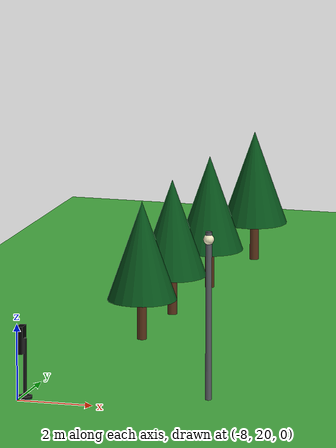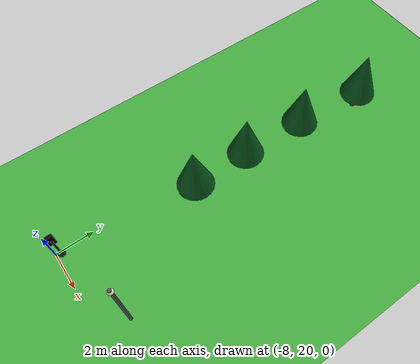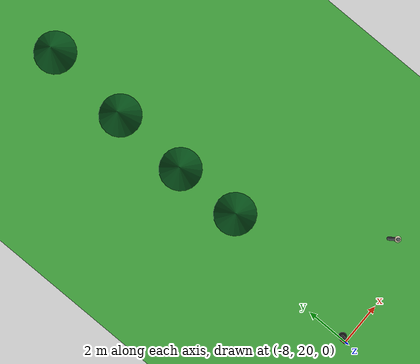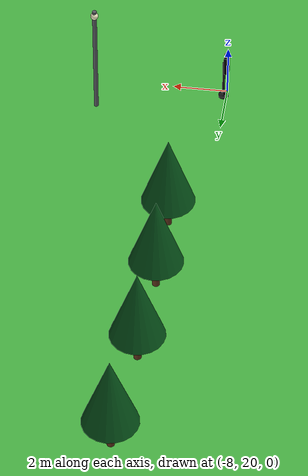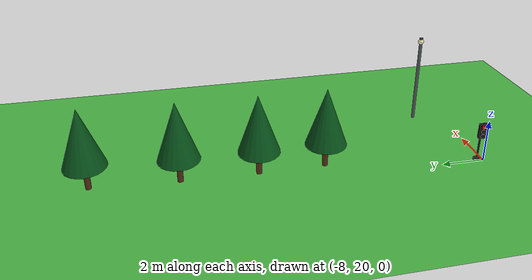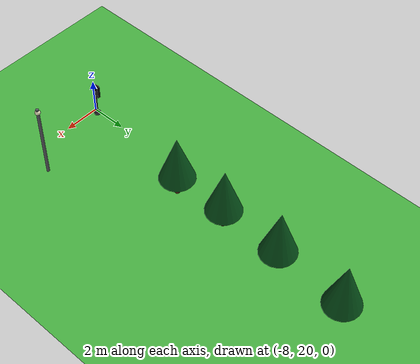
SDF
<sdf version="1.10">
 <world name="city_second">
  <model name="ground_plane">
   <static>true</static>
   <link name="link">
    <collision name="collision">
     <geometry><plane><normal>0 0 1</normal><size>300 300</size></plane></geometry>
    </collision>
    <visual name="visual">
     <geometry><plane><normal>0 0 1</normal><size>300 300</size></plane></geometry>
     <material>
      <ambient>0.280000001 0.689999998 0.25999999 1</ambient>
      <diffuse>0.280000001 0.689999998 0.25999999 1</diffuse>
      <specular>0.0299999993 0.0299999993 0.0299999993 1</specular>
     </material>
    </visual>
    <inertial>
     <mass>1</mass>
     <inertia><ixx>1</ixx><ixy>0</ixy><ixz>0</ixz><iyy>1</iyy><iyz>0</iyz><izz>1</izz></inertia>
    </inertial>
   </link>
  </model>
  <model name="lamp_1_2_15">
   <static>true</static>
   <pose>-3.3274400000000002 21.4406 2.2000000000000002 0 0 0</pose>
   <link name="link">
    <collision name="collision">
     <geometry>
      <cylinder><radius>0.080000000000000002</radius><length>4.4000000000000004</length></cylinder>
     </geometry>
    </collision>
    <visual name="pole">
     <geometry>
      <cylinder><radius>0.080000000000000002</radius><length>4.4000000000000004</length></cylinder>
     </geometry>
     <material>
      <ambient>0.349999994 0.360000014 0.379999995 1</ambient>
      <diffuse>0.349999994 0.360000014 0.379999995 1</diffuse>
      <specular>0.0299999993 0.0299999993 0.0299999993 1</specular>
     </material>
    </visual>
    <visual name="lamp_head">
     <pose>0 0 2 0 0 0</pose>
     <geometry><sphere><radius>0.14000000000000001</radius></sphere></geometry>
     <material>
      <ambient>0.959999979 0.939999998 0.779999971 1</ambient>
      <diffuse>0.959999979 0.939999998 0.779999971 1</diffuse>
      <specular>0.0299999993 0.0299999993 0.0299999993 1</specular>
     </material>
    </visual>
    <inertial>
     <mass>1</mass>
     <inertia><ixx>1</ixx><ixy>0</ixy><ixz>0</ixz><iyy>1</iyy><iyz>0</iyz><izz>1</izz></inertia>
    </inertial>
   </link>
  </model>
  <model name="Pine Tree_2">
   <static>true</static>
   <pose>-6.4425299999999996 37.668399999999998 0 0 0 0</pose>
   <link name="link">
    <collision name="footprint">
     <pose>0 0 0.050000000000000003 0 0 0</pose>
     <geometry>
      <cylinder><radius>0.65000000000000002</radius><length>0.10000000000000001</length></cylinder>
     </geometry>
    </collision>
    <visual name="trunk">
     <pose>0 0 0.90000000000000002 0 0 0</pose>
     <geometry><cylinder><radius>0.13</radius><length>1.8</length></cylinder></geometry>
     <material>
      <ambient>0.360000014 0.200000003 0.100000001 1</ambient>
      <diffuse>0.360000014 0.200000003 0.100000001 1</diffuse>
      <specular>0.119999997 0.119999997 0.119999997 1</specular>
      <emissive>0 0 0 1</emissive>
     </material>
    </visual>
    <visual name="crown">
     <pose>0 0 2.4500000000000002 0 0 0</pose>
     <geometry><cone><radius>0.94999999999999996</radius><length>2.7000000000000002</length></cone></geometry>
     <material>
      <ambient>0.0299999993 0.340000004 0.109999999 1</ambient>
      <diffuse>0.0299999993 0.340000004 0.109999999 1</diffuse>
      <specular>0.119999997 0.119999997 0.119999997 1</specular>
      <emissive>0 0 0 1</emissive>
     </material>
    </visual>
    <inertial>
     <mass>1</mass>
     <inertia><ixx>1</ixx><ixy>0</ixy><ixz>0</ixz><iyy>1</iyy><iyz>0</iyz><izz>1</izz></inertia>
    </inertial>
   </link>
  </model>
  <model name="Pine Tree_3">
   <static>true</static>
   <pose>-6.7212500000000004 33.771900000000002 0 0 0 0</pose>
   <link name="link">
    <collision name="footprint">
     <pose>0 0 0.050000000000000003 0 0 0</pose>
     <geometry>
      <cylinder><radius>0.65000000000000002</radius><length>0.10000000000000001</length></cylinder>
     </geometry>
    </collision>
    <visual name="trunk">
     <pose>0 0 0.90000000000000002 0 0 0</pose>
     <geometry><cylinder><radius>0.13</radius><length>1.8</length></cylinder></geometry>
     <material>
      <ambient>0.360000014 0.200000003 0.100000001 1</ambient>
      <diffuse>0.360000014 0.200000003 0.100000001 1</diffuse>
      <specular>0.119999997 0.119999997 0.119999997 1</specular>
      <emissive>0 0 0 1</emissive>
     </material>
    </visual>
    <visual name="crown">
     <pose>0 0 2.4500000000000002 0 0 0</pose>
     <geometry><cone><radius>0.94999999999999996</radius><length>2.7000000000000002</length></cone></geometry>
     <material>
      <ambient>0.0299999993 0.340000004 0.109999999 1</ambient>
      <diffuse>0.0299999993 0.340000004 0.109999999 1</diffuse>
      <specular>0.119999997 0.119999997 0.119999997 1</specular>
      <emissive>0 0 0 1</emissive>
     </material>
    </visual>
    <inertial>
     <mass>1</mass>
     <inertia><ixx>1</ixx><ixy>0</ixy><ixz>0</ixz><iyy>1</iyy><iyz>0</iyz><izz>1</izz></inertia>
    </inertial>
   </link>
  </model>
  <model name="Pine Tree_4">
   <static>true</static>
   <pose>-6.8345700000000003 30.302499999999998 0 0 0 0</pose>
   <link name="link">
    <collision name="footprint">
     <pose>0 0 0.050000000000000003 0 0 0</pose>
     <geometry>
      <cylinder><radius>0.65000000000000002</radius><length>0.10000000000000001</length></cylinder>
     </geometry>
    </collision>
    <visual name="trunk">
     <pose>0 0 0.90000000000000002 0 0 0</pose>
     <geometry><cylinder><radius>0.13</radius><length>1.8</length></cylinder></geometry>
     <material>
      <ambient>0.360000014 0.200000003 0.100000001 1</ambient>
      <diffuse>0.360000014 0.200000003 0.100000001 1</diffuse>
      <specular>0.119999997 0.119999997 0.119999997 1</specular>
      <emissive>0 0 0 1</emissive>
     </material>
    </visual>
    <visual name="crown">
     <pose>0 0 2.4500000000000002 0 0 0</pose>
     <geometry><cone><radius>0.94999999999999996</radius><length>2.7000000000000002</length></cone></geometry>
     <material>
      <ambient>0.0299999993 0.340000004 0.109999999 1</ambient>
      <diffuse>0.0299999993 0.340000004 0.109999999 1</diffuse>
      <specular>0.119999997 0.119999997 0.119999997 1</specular>
      <emissive>0 0 0 1</emissive>
     </material>
    </visual>
    <inertial>
     <mass>1</mass>
     <inertia><ixx>1</ixx><ixy>0</ixy><ixz>0</ixz><iyy>1</iyy><iyz>0</iyz><izz>1</izz></inertia>
    </inertial>
   </link>
  </model>
  <model name="Pine Tree_5">
   <static>true</static>
   <pose>-6.8132099999999998 27.2591 0 0 0 0</pose>
   <link name="link">
    <collision name="footprint">
     <pose>0 0 0.050000000000000003 0 0 0</pose>
     <geometry>
      <cylinder><radius>0.65000000000000002</radius><length>0.10000000000000001</length></cylinder>
     </geometry>
    </collision>
    <visual name="trunk">
     <pose>0 0 0.90000000000000002 0 0 0</pose>
     <geometry><cylinder><radius>0.13</radius><length>1.8</length></cylinder></geometry>
     <material>
      <ambient>0.360000014 0.200000003 0.100000001 1</ambient>
      <diffuse>0.360000014 0.200000003 0.100000001 1</diffuse>
      <specular>0.119999997 0.119999997 0.119999997 1</specular>
      <emissive>0 0 0 1</emissive>
     </material>
    </visual>
    <visual name="crown">
     <pose>0 0 2.4500000000000002 0 0 0</pose>
     <geometry><cone><radius>0.94999999999999996</radius><length>2.7000000000000002</length></cone></geometry>
     <material>
      <ambient>0.0299999993 0.340000004 0.109999999 1</ambient>
      <diffuse>0.0299999993 0.340000004 0.109999999 1</diffuse>
      <specular>0.119999997 0.119999997 0.119999997 1</specular>
      <emissive>0 0 0 1</emissive>
     </material>
    </visual>
    <inertial>
     <mass>1</mass>
     <inertia><ixx>1</ixx><ixy>0</ixy><ixz>0</ixz><iyy>1</iyy><iyz>0</iyz><izz>1</izz></inertia>
    </inertial>
   </link>
  </model>
  <model name="simple_traffic_light_red_west_2_1">
   <static>true</static>
   <pose>-7.8804206978780122 20.265613883144834 -2.0816681711721685e-17 0 0 1.5707999672671711</pose>
   <link name="base">
    <pose>0 0 0.040000000000000001 0 0 0</pose>
    <collision name="collision">
     <geometry>
      <cylinder><radius>0.17999999999999999</radius><length>0.080000000000000002</length></cylinder>
     </geometry>
    </collision>
    <visual name="visual">
     <geometry>
      <cylinder><radius>0.17999999999999999</radius><length>0.080000000000000002</length></cylinder>
     </geometry>
     <material>
      <ambient>0.0799999982 0.0799999982 0.0799999982 1</ambient>
      <diffuse>0.0799999982 0.0799999982 0.0799999982 1</diffuse>
      <specular>0.150000006 0.150000006 0.150000006 1</specular>
      <emissive>0 0 0 1</emissive>
     </material>
    </visual>
    <inertial>
     <mass>1</mass>
     <inertia><ixx>1</ixx><ixy>0</ixy><ixz>0</ixz><iyy>1</iyy><iyz>0</iyz><izz>1</izz></inertia>
    </inertial>
   </link>
   <link name="pole">
    <pose>3.5527136788005009e-15 -1.7763568394002505e-15 0.80000000000000004 0 0 3.3306690738754696e-16</pose>
    <collision name="collision">
     <geometry>
      <cylinder><radius>0.044999999999999998</radius><length>1.6000000000000001</length></cylinder>
     </geometry>
    </collision>
    <visual name="visual">
     <geometry>
      <cylinder><radius>0.044999999999999998</radius><length>1.6000000000000001</length></cylinder>
     </geometry>
     <material>
      <ambient>0.0799999982 0.0799999982 0.0799999982 1</ambient>
      <diffuse>0.0799999982 0.0799999982 0.0799999982 1</diffuse>
      <specular>0.150000006 0.150000006 0.150000006 1</specular>
      <emissive>0 0 0 1</emissive>
     </material>
    </visual>
    <inertial>
     <mass>1</mass>
     <inertia><ixx>1</ixx><ixy>0</ixy><ixz>0</ixz><iyy>1</iyy><iyz>0</iyz><izz>1</izz></inertia>
    </inertial>
   </link>
   <link name="signal_box">
    <pose>-3.5527136788005009e-15 0.090000000000000746 1.5500000000000003 0 0 3.3306690738754696e-16</pose>
    <collision name="collision">
     <geometry><box><size>0.34000000000000002 0.16 0.71999999999999997</size></box></geometry>
    </collision>
    <visual name="visual">
     <geometry><box><size>0.34000000000000002 0.16 0.71999999999999997</size></box></geometry>
     <material>
      <ambient>0.0199999996 0.0199999996 0.0199999996 1</ambient>
      <diffuse>0.0199999996 0.0199999996 0.0199999996 1</diffuse>
      <specular>0.150000006 0.150000006 0.150000006 1</specular>
      <emissive>0 0 0 1</emissive>
     </material>
    </visual>
    <inertial>
     <mass>1</mass>
     <inertia><ixx>1</ixx><ixy>0</ixy><ixz>0</ixz><iyy>1</iyy><iyz>0</iyz><izz>1</izz></inertia>
    </inertial>
   </link>
   <link name="red_lens">
    <pose>0 0.18100000000000094 1.78 1.5707963267999998 -7.8504622930783579e-17 -1.3345785898814093e-15</pose>
    <collision name="collision">
     <geometry><cylinder><radius>0.105</radius><length>0.035000000000000003</length></cylinder></geometry>
    </collision>
    <visual name="visual">
     <geometry><cylinder><radius>0.105</radius><length>0.035000000000000003</length></cylinder></geometry>
     <material>
      <ambient>1 0.0199999996 0.0199999996 1</ambient>
      <diffuse>1 0.0199999996 0.0199999996 1</diffuse>
      <specular>0.150000006 0.150000006 0.150000006 1</specular>
      <emissive>1 0.0199999996 0.0199999996 1</emissive>
     </material>
    </visual>
    <inertial>
     <mass>1</mass>
     <inertia><ixx>1</ixx><ixy>0</ixy><ixz>0</ixz><iyy>1</iyy><iyz>0</iyz><izz>1</izz></inertia>
    </inertial>
   </link>
   <link name="yellow_lens">
    <pose>-7.1054273576010019e-15 0.18200000000000038 1.5500000000000003 1.5707963267999998 -7.8504622930783579e-17 -1.3345785898814093e-15</pose>
    <collision name="collision">
     <geometry>
      <cylinder><radius>0.095000000000000001</radius><length>0.035000000000000003</length></cylinder>
     </geometry>
    </collision>
    <visual name="visual">
     <geometry>
      <cylinder><radius>0.095000000000000001</radius><length>0.035000000000000003</length></cylinder>
     </geometry>
     <material>
      <ambient>0.119999997 0.100000001 0.0199999996 1</ambient>
      <diffuse>0.119999997 0.100000001 0.0199999996 1</diffuse>
      <specular>0.150000006 0.150000006 0.150000006 1</specular>
      <emissive>0 0 0 1</emissive>
     </material>
    </visual>
    <inertial>
     <mass>1</mass>
     <inertia><ixx>1</ixx><ixy>0</ixy><ixz>0</ixz><iyy>1</iyy><iyz>0</iyz><izz>1</izz></inertia>
    </inertial>
   </link>
   <link name="green_lens">
    <pose>3.5527136788005009e-15 0.18300000000000516 1.3199999999999998 1.5707963267999998 -7.8504622930783579e-17 -1.3345785898814093e-15</pose>
    <collision name="collision">
     <geometry><cylinder><radius>0.105</radius><length>0.035000000000000003</length></cylinder></geometry>
    </collision>
    <visual name="visual">
     <geometry><cylinder><radius>0.105</radius><length>0.035000000000000003</length></cylinder></geometry>
     <material>
      <ambient>0.0799999982 0.0799999982 0.0799999982 1</ambient>
      <diffuse>0.0799999982 0.0799999982 0.0799999982 1</diffuse>
      <specular>0.150000006 0.150000006 0.150000006 1</specular>
      <emissive>0 0 0 1</emissive>
     </material>
    </visual>
    <inertial>
     <mass>1</mass>
     <inertia><ixx>1</ixx><ixy>0</ixy><ixz>0</ixz><iyy>1</iyy><iyz>0</iyz><izz>1</izz></inertia>
    </inertial>
   </link>
  </model>
 </world>
</sdf>
